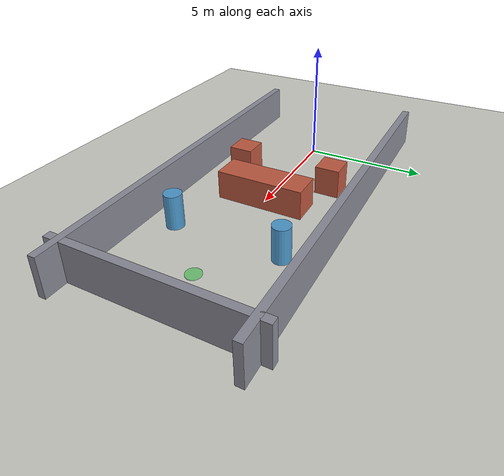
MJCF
<mujoco model="go1_flat_nav">
  <compiler angle="radian" autolimits="true"/>
  <option gravity="0 0 -9.81" timestep="0.005" integrator="RK4"/>

  <visual>
    <global offwidth="1280" offheight="720"/>
    <headlight ambient="0.35 0.35 0.35"/>
    <quality shadowsize="2048"/>
    <map znear="0.01" zfar="200"/>
  </visual>

  <asset>
    <texture name="grid" type="2d" builtin="checker"
             rgb1=".88 .88 .85" rgb2=".72 .72 .70" width="512" height="512"/>
    <material name="grid_mat"  texture="grid"  texrepeat="8 8" reflectance="0.03"/>
    <material name="wall_mat"  rgba=".55 .55 .60 1"/>
    <material name="block_mat" rgba=".75 .35 .25 1"/>
    <material name="goal_mat"  rgba=".25 .80 .30 0.6"/>
  </asset>

  <worldbody>
    <!-- Floor — group 0, LiDAR will see it only below range_min -->
    <geom name="floor" type="plane" size="60 60 0.1"
          material="grid_mat" conaffinity="1" condim="3" group="0"/>

    <!-- Lights -->
    <light name="sun"  pos="0 0 30"   dir="0 0 -1"     diffuse=".85 .85 .85" specular=".15 .15 .15"/>
    <light name="fill" pos="8 -8 12"  dir="-0.5 0.5 -1" diffuse=".30 .30 .30"/>

    <!-- ── Navigation obstacles (group=2: visible to LiDAR, not robot self) ── -->

    <!-- Left wall corridor -->
    <geom name="wall_L" type="box" size="8.0 0.15 0.8"
          pos="5.0  3.5 0.8" material="wall_mat" conaffinity="1" group="2"/>
    <!-- Right wall corridor -->
    <geom name="wall_R" type="box" size="8.0 0.15 0.8"
          pos="5.0 -3.5 0.8" material="wall_mat" conaffinity="1" group="2"/>
    <!-- Center block — forces robot to navigate around it -->
    <geom name="block_C" type="box" size="0.6 1.8 0.6"
          pos="5.0  0.0 0.6" material="block_mat" conaffinity="1" group="2"/>
    <!-- Far wall closing off corridor -->
    <geom name="wall_far" type="box" size="0.15 4.0 0.8"
          pos="12.0 0.0 0.8" material="wall_mat" conaffinity="1" group="2"/>
    <!-- Extra scattered blocks for richer mapping -->
    <geom name="block_A" type="box" size="0.5 0.5 0.6"
          pos="3.0  2.0 0.6" material="block_mat" conaffinity="1" group="2"/>
    <geom name="block_B" type="box" size="0.5 0.5 0.6"
          pos="3.0 -2.0 0.6" material="block_mat" conaffinity="1" group="2"/>
    <geom name="cyl_A" type="cylinder" size="0.35 0.7"
          pos="8.0  2.2 0.7" rgba=".3 .6 .8 1" conaffinity="1" group="2"/>
    <geom name="cyl_B" type="cylinder" size="0.35 0.7"
          pos="8.0 -2.2 0.7" rgba=".3 .6 .8 1" conaffinity="1" group="2"/>

    <!-- Goal marker (visual only, no collision) -->
    <geom name="goal_marker" type="cylinder" size="0.30 0.02"
          pos="10.0 0.0 0.02" material="goal_mat" conaffinity="0" group="1"/>

    <!-- IMU site — needed by Go1OnnxController for gravity vector -->
    <!-- (Also declared in unitree_go1.xml via menagerie; this is a fallback
         in case the menagerie XML uses a different site name) -->
  </worldbody>

  <sensor>
    <!-- Sensors declared in unitree_go1.xml override these if names collide.
         Listed here as documentation of what the policy expects. -->
    <!-- gyro       : body angular velocity (trunk) -->
    <!-- local_linvel: body linear velocity in local frame -->
    <!-- imu site   : used to compute gravity vector via xmat -->
  </sensor>

</mujoco>
